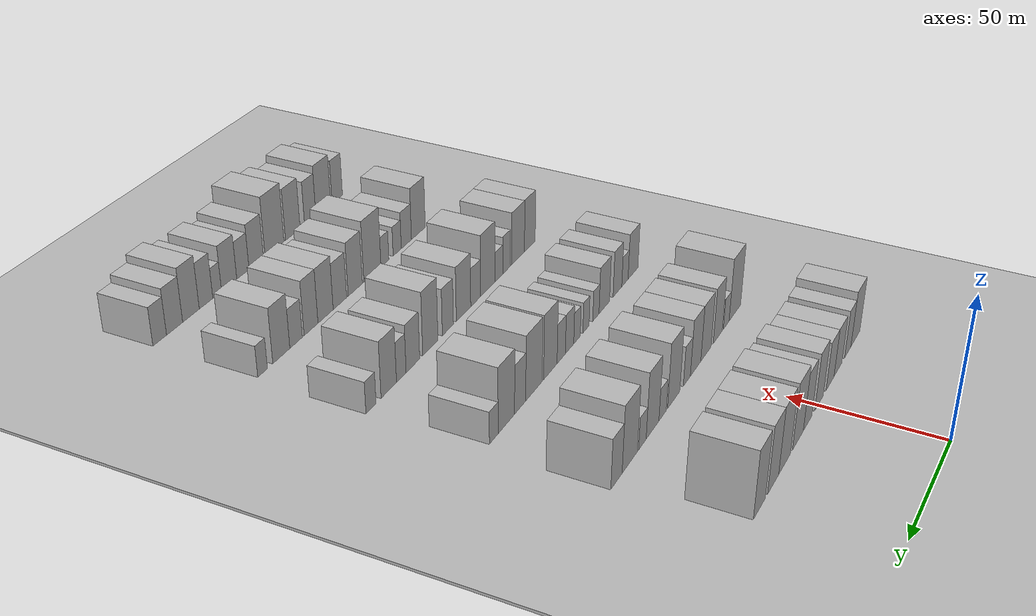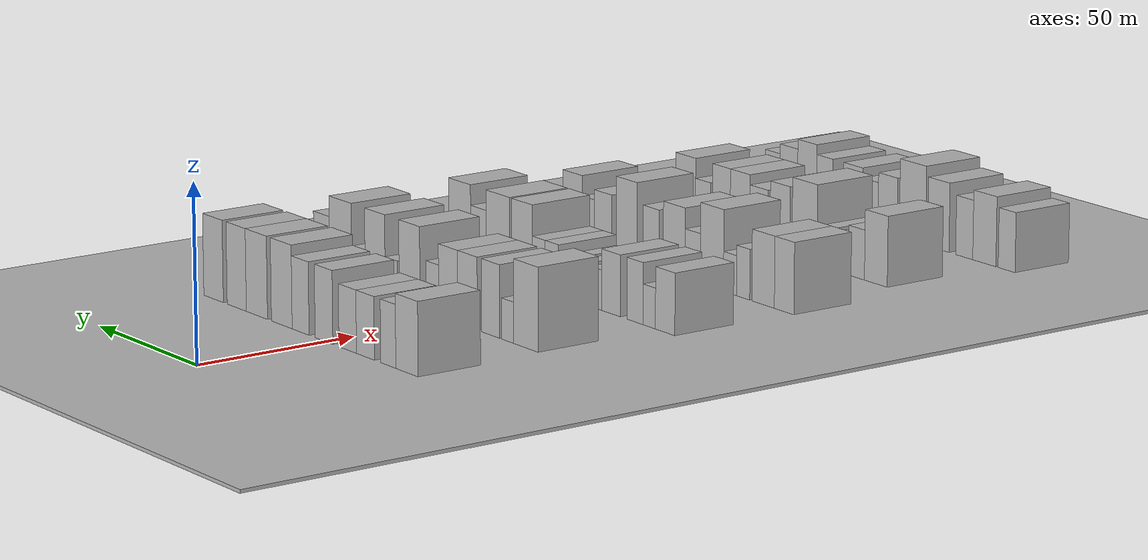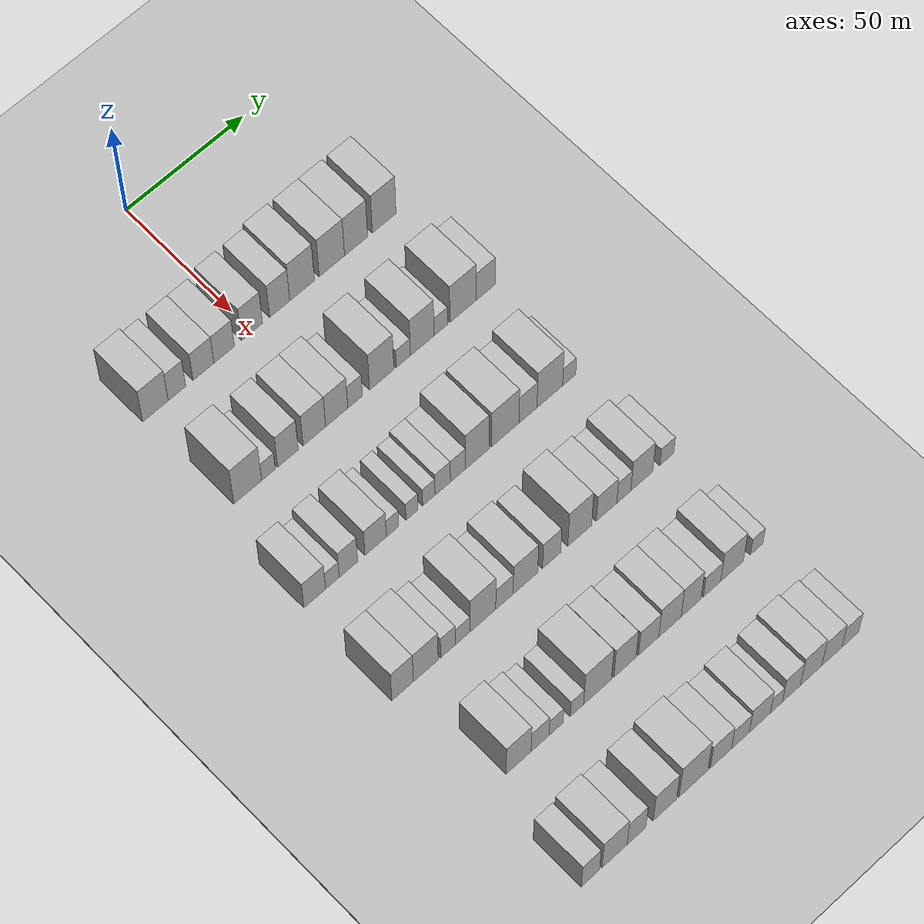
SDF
<sdf version="1.6">
 <world name="default">
  <include><name>ground_plane_1</name><uri>model://HANNAS_ground_plane</uri></include>
  <include>
   <name>ground_plane_2</name>
   <uri>model://HANNAS_ground_plane</uri>
   <pose>100 0 0  0 0 0</pose>
  </include>
  <model name="building_69">
   <static>1</static>
   <pose>50.0000 -40.2762 0 0.000000 0.000000 0.000000</pose>
   <link name="link">
    <pose>0 0 10.50 0 0 0</pose>
    <collision name="collision"><geometry><box><size>20.0000 10.4989 21.0000</size></box></geometry></collision>
    <visual name="visual">
     <cast_shadows>0</cast_shadows>
     <geometry><box><size>20.0000 10.4989 21.0000</size></box></geometry>
     <material>
      <script>
       <uri>model://HANNAS_wall/materials/scripts</uri>
       <uri>model://HANNAS_wall/materials/textures</uri>
       <name>vrc/HANNAS_wall</name>
      </script>
     </material>
    </visual>
   </link>
  </model>
  <model name="building_70">
   <static>1</static>
   <pose>50.0000 -31.4251 0 0.000000 0.000000 0.000000</pose>
   <link name="link">
    <pose>0 0 9.00 0 0 0</pose>
    <collision name="collision"><geometry><box><size>20.0000 7.2034 18.0000</size></box></geometry></collision>
    <visual name="visual">
     <cast_shadows>0</cast_shadows>
     <geometry><box><size>20.0000 7.2034 18.0000</size></box></geometry>
     <material>
      <script>
       <uri>model://HANNAS_wall/materials/scripts</uri>
       <uri>model://HANNAS_wall/materials/textures</uri>
       <name>vrc/HANNAS_wall</name>
      </script>
     </material>
    </visual>
   </link>
  </model>
  <model name="building_71">
   <static>1</static>
   <pose>50.0000 -20.4937 0 0.000000 0.000000 0.000000</pose>
   <link name="link">
    <pose>0 0 9.00 0 0 0</pose>
    <collision name="collision"><geometry><box><size>20.0000 8.6593 18.0000</size></box></geometry></collision>
    <visual name="visual">
     <cast_shadows>0</cast_shadows>
     <geometry><box><size>20.0000 8.6593 18.0000</size></box></geometry>
     <material>
      <script>
       <uri>model://HANNAS_wall/materials/scripts</uri>
       <uri>model://HANNAS_wall/materials/textures</uri>
       <name>vrc/HANNAS_wall</name>
      </script>
     </material>
    </visual>
   </link>
  </model>
  <model name="building_72">
   <static>1</static>
   <pose>50.0000 -11.9070 0 0.000000 0.000000 0.000000</pose>
   <link name="link">
    <pose>0 0 9.00 0 0 0</pose>
    <collision name="collision"><geometry><box><size>20.0000 8.5142 18.0000</size></box></geometry></collision>
    <visual name="visual">
     <cast_shadows>0</cast_shadows>
     <geometry><box><size>20.0000 8.5142 18.0000</size></box></geometry>
     <material>
      <script>
       <uri>model://HANNAS_wall/materials/scripts</uri>
       <uri>model://HANNAS_wall/materials/textures</uri>
       <name>vrc/HANNAS_wall</name>
      </script>
     </material>
    </visual>
   </link>
  </model>
  <model name="building_73">
   <static>1</static>
   <pose>50.0000 -0.2831 0 0.000000 0.000000 0.000000</pose>
   <link name="link">
    <pose>0 0 10.50 0 0 0</pose>
    <collision name="collision"><geometry><box><size>20.0000 8.7335 21.0000</size></box></geometry></collision>
    <visual name="visual">
     <cast_shadows>0</cast_shadows>
     <geometry><box><size>20.0000 8.7335 21.0000</size></box></geometry>
     <material>
      <script>
       <uri>model://HANNAS_wall/materials/scripts</uri>
       <uri>model://HANNAS_wall/materials/textures</uri>
       <name>vrc/HANNAS_wall</name>
      </script>
     </material>
    </visual>
   </link>
  </model>
  <model name="building_74">
   <static>1</static>
   <pose>50.0000 11.3050 0 0.000000 0.000000 0.000000</pose>
   <link name="link">
    <pose>0 0 10.50 0 0 0</pose>
    <collision name="collision"><geometry><box><size>20.0000 8.4427 21.0000</size></box></geometry></collision>
    <visual name="visual">
     <cast_shadows>0</cast_shadows>
     <geometry><box><size>20.0000 8.4427 21.0000</size></box></geometry>
     <material>
      <script>
       <uri>model://HANNAS_wall/materials/scripts</uri>
       <uri>model://HANNAS_wall/materials/textures</uri>
       <name>vrc/HANNAS_wall</name>
      </script>
     </material>
    </visual>
   </link>
  </model>
  <model name="building_75">
   <static>1</static>
   <pose>50.0000 20.7596 0 0.000000 0.000000 0.000000</pose>
   <link name="link">
    <pose>0 0 12.00 0 0 0</pose>
    <collision name="collision"><geometry><box><size>20.0000 10.4666 24.0000</size></box></geometry></collision>
    <visual name="visual">
     <cast_shadows>0</cast_shadows>
     <geometry><box><size>20.0000 10.4666 24.0000</size></box></geometry>
     <material>
      <script>
       <uri>model://HANNAS_wall/materials/scripts</uri>
       <uri>model://HANNAS_wall/materials/textures</uri>
       <name>vrc/HANNAS_wall</name>
      </script>
     </material>
    </visual>
   </link>
  </model>
  <model name="building_76">
   <static>1</static>
   <pose>50.0000 33.4043 0 0.000000 0.000000 0.000000</pose>
   <link name="link">
    <pose>0 0 12.00 0 0 0</pose>
    <collision name="collision"><geometry><box><size>20.0000 10.8227 24.0000</size></box></geometry></collision>
    <visual name="visual">
     <cast_shadows>0</cast_shadows>
     <geometry><box><size>20.0000 10.8227 24.0000</size></box></geometry>
     <material>
      <script>
       <uri>model://HANNAS_wall/materials/scripts</uri>
       <uri>model://HANNAS_wall/materials/textures</uri>
       <name>vrc/HANNAS_wall</name>
      </script>
     </material>
    </visual>
   </link>
  </model>
  <model name="building_77">
   <static>1</static>
   <pose>50.0000 43.7617 0 0.000000 0.000000 0.000000</pose>
   <link name="link">
    <pose>0 0 12.00 0 0 0</pose>
    <collision name="collision"><geometry><box><size>20.0000 9.8921 24.0000</size></box></geometry></collision>
    <visual name="visual">
     <cast_shadows>0</cast_shadows>
     <geometry><box><size>20.0000 9.8921 24.0000</size></box></geometry>
     <material>
      <script>
       <uri>model://HANNAS_wall/materials/scripts</uri>
       <uri>model://HANNAS_wall/materials/textures</uri>
       <name>vrc/HANNAS_wall</name>
      </script>
     </material>
    </visual>
   </link>
  </model>
  <model name="building_78">
   <static>1</static>
   <pose>50.0000 55.8153 0 0.000000 0.000000 0.000000</pose>
   <link name="link">
    <pose>0 0 12.00 0 0 0</pose>
    <collision name="collision"><geometry><box><size>20.0000 10.2152 24.0000</size></box></geometry></collision>
    <visual name="visual">
     <cast_shadows>0</cast_shadows>
     <geometry><box><size>20.0000 10.2152 24.0000</size></box></geometry>
     <material>
      <script>
       <uri>model://HANNAS_wall/materials/scripts</uri>
       <uri>model://HANNAS_wall/materials/textures</uri>
       <name>vrc/HANNAS_wall</name>
      </script>
     </material>
    </visual>
   </link>
  </model>
  <model name="building_208">
   <static>1</static>
   <pose>90.0000 -38.0436 0 0.000000 0.000000 0.000000</pose>
   <link name="link">
    <pose>0 0 12.00 0 0 0</pose>
    <collision name="collision"><geometry><box><size>20.0000 11.4128 24.0000</size></box></geometry></collision>
    <visual name="visual">
     <cast_shadows>0</cast_shadows>
     <geometry><box><size>20.0000 11.4128 24.0000</size></box></geometry>
     <material>
      <script>
       <uri>model://HANNAS_wall/materials/scripts</uri>
       <uri>model://HANNAS_wall/materials/textures</uri>
       <name>vrc/HANNAS_wall</name>
      </script>
     </material>
    </visual>
   </link>
  </model>
  <model name="building_209">
   <static>1</static>
   <pose>90.0000 -29.5379 0 0.000000 0.000000 0.000000</pose>
   <link name="link">
    <pose>0 0 6.00 0 0 0</pose>
    <collision name="collision"><geometry><box><size>20.0000 5.5986 12.0000</size></box></geometry></collision>
    <visual name="visual">
     <cast_shadows>0</cast_shadows>
     <geometry><box><size>20.0000 5.5986 12.0000</size></box></geometry>
     <material>
      <script>
       <uri>model://HANNAS_wall/materials/scripts</uri>
       <uri>model://HANNAS_wall/materials/textures</uri>
       <name>vrc/HANNAS_wall</name>
      </script>
     </material>
    </visual>
   </link>
  </model>
  <model name="building_210">
   <static>1</static>
   <pose>90.0000 -21.4828 0 0.000000 0.000000 0.000000</pose>
   <link name="link">
    <pose>0 0 10.50 0 0 0</pose>
    <collision name="collision"><geometry><box><size>20.0000 8.5116 21.0000</size></box></geometry></collision>
    <visual name="visual">
     <cast_shadows>0</cast_shadows>
     <geometry><box><size>20.0000 8.5116 21.0000</size></box></geometry>
     <material>
      <script>
       <uri>model://HANNAS_wall/materials/scripts</uri>
       <uri>model://HANNAS_wall/materials/textures</uri>
       <name>vrc/HANNAS_wall</name>
      </script>
     </material>
    </visual>
   </link>
  </model>
  <model name="building_211">
   <static>1</static>
   <pose>90.0000 -10.5505 0 0.000000 0.000000 0.000000</pose>
   <link name="link">
    <pose>0 0 10.50 0 0 0</pose>
    <collision name="collision"><geometry><box><size>20.0000 9.3529 21.0000</size></box></geometry></collision>
    <visual name="visual">
     <cast_shadows>0</cast_shadows>
     <geometry><box><size>20.0000 9.3529 21.0000</size></box></geometry>
     <material>
      <script>
       <uri>model://HANNAS_wall/materials/scripts</uri>
       <uri>model://HANNAS_wall/materials/textures</uri>
       <name>vrc/HANNAS_wall</name>
      </script>
     </material>
    </visual>
   </link>
  </model>
  <model name="building_212">
   <static>1</static>
   <pose>90.0000 -1.2440 0 0.000000 0.000000 0.000000</pose>
   <link name="link">
    <pose>0 0 10.50 0 0 0</pose>
    <collision name="collision"><geometry><box><size>20.0000 9.2602 21.0000</size></box></geometry></collision>
    <visual name="visual">
     <cast_shadows>0</cast_shadows>
     <geometry><box><size>20.0000 9.2602 21.0000</size></box></geometry>
     <material>
      <script>
       <uri>model://HANNAS_wall/materials/scripts</uri>
       <uri>model://HANNAS_wall/materials/textures</uri>
       <name>vrc/HANNAS_wall</name>
      </script>
     </material>
    </visual>
   </link>
  </model>
  <model name="building_213">
   <static>1</static>
   <pose>90.0000 6.4422 0 0.000000 0.000000 0.000000</pose>
   <link name="link">
    <pose>0 0 7.50 0 0 0</pose>
    <collision name="collision"><geometry><box><size>20.0000 6.1121 15.0000</size></box></geometry></collision>
    <visual name="visual">
     <cast_shadows>0</cast_shadows>
     <geometry><box><size>20.0000 6.1121 15.0000</size></box></geometry>
     <material>
      <script>
       <uri>model://HANNAS_wall/materials/scripts</uri>
       <uri>model://HANNAS_wall/materials/textures</uri>
       <name>vrc/HANNAS_wall</name>
      </script>
     </material>
    </visual>
   </link>
  </model>
  <model name="building_214">
   <static>1</static>
   <pose>90.0000 17.6337 0 0.000000 0.000000 0.000000</pose>
   <link name="link">
    <pose>0 0 12.00 0 0 0</pose>
    <collision name="collision"><geometry><box><size>20.0000 10.2709 24.0000</size></box></geometry></collision>
    <visual name="visual">
     <cast_shadows>0</cast_shadows>
     <geometry><box><size>20.0000 10.2709 24.0000</size></box></geometry>
     <material>
      <script>
       <uri>model://HANNAS_wall/materials/scripts</uri>
       <uri>model://HANNAS_wall/materials/textures</uri>
       <name>vrc/HANNAS_wall</name>
      </script>
     </material>
    </visual>
   </link>
  </model>
  <model name="building_215">
   <static>1</static>
   <pose>90.0000 26.7598 0 0.000000 0.000000 0.000000</pose>
   <link name="link">
    <pose>0 0 6.00 0 0 0</pose>
    <collision name="collision"><geometry><box><size>20.0000 5.9815 12.0000</size></box></geometry></collision>
    <visual name="visual">
     <cast_shadows>0</cast_shadows>
     <geometry><box><size>20.0000 5.9815 12.0000</size></box></geometry>
     <material>
      <script>
       <uri>model://HANNAS_wall/materials/scripts</uri>
       <uri>model://HANNAS_wall/materials/textures</uri>
       <name>vrc/HANNAS_wall</name>
      </script>
     </material>
    </visual>
   </link>
  </model>
  <model name="building_216">
   <static>1</static>
   <pose>90.0000 34.7843 0 0.000000 0.000000 0.000000</pose>
   <link name="link">
    <pose>0 0 12.00 0 0 0</pose>
    <collision name="collision"><geometry><box><size>20.0000 10.0675 24.0000</size></box></geometry></collision>
    <visual name="visual">
     <cast_shadows>0</cast_shadows>
     <geometry><box><size>20.0000 10.0675 24.0000</size></box></geometry>
     <material>
      <script>
       <uri>model://HANNAS_wall/materials/scripts</uri>
       <uri>model://HANNAS_wall/materials/textures</uri>
       <name>vrc/HANNAS_wall</name>
      </script>
     </material>
    </visual>
   </link>
  </model>
  <model name="building_217">
   <static>1</static>
   <pose>90.0000 42.7127 0 0.000000 0.000000 0.000000</pose>
   <link name="link">
    <pose>0 0 6.00 0 0 0</pose>
    <collision name="collision"><geometry><box><size>20.0000 5.7894 12.0000</size></box></geometry></collision>
    <visual name="visual">
     <cast_shadows>0</cast_shadows>
     <geometry><box><size>20.0000 5.7894 12.0000</size></box></geometry>
     <material>
      <script>
       <uri>model://HANNAS_wall/materials/scripts</uri>
       <uri>model://HANNAS_wall/materials/textures</uri>
       <name>vrc/HANNAS_wall</name>
      </script>
     </material>
    </visual>
   </link>
  </model>
  <model name="building_218">
   <static>1</static>
   <pose>90.0000 52.2716 0 0.000000 0.000000 0.000000</pose>
   <link name="link">
    <pose>0 0 12.00 0 0 0</pose>
    <collision name="collision"><geometry><box><size>20.0000 11.3285 24.0000</size></box></geometry></collision>
    <visual name="visual">
     <cast_shadows>0</cast_shadows>
     <geometry><box><size>20.0000 11.3285 24.0000</size></box></geometry>
     <material>
      <script>
       <uri>model://HANNAS_wall/materials/scripts</uri>
       <uri>model://HANNAS_wall/materials/textures</uri>
       <name>vrc/HANNAS_wall</name>
      </script>
     </material>
    </visual>
   </link>
  </model>
  <model name="building_219">
   <static>1</static>
   <pose>90.0000 62.0238 0 0.000000 0.000000 0.000000</pose>
   <link name="link">
    <pose>0 0 9.00 0 0 0</pose>
    <collision name="collision"><geometry><box><size>20.0000 8.1759 18.0000</size></box></geometry></collision>
    <visual name="visual">
     <cast_shadows>0</cast_shadows>
     <geometry><box><size>20.0000 8.1759 18.0000</size></box></geometry>
     <material>
      <script>
       <uri>model://HANNAS_wall/materials/scripts</uri>
       <uri>model://HANNAS_wall/materials/textures</uri>
       <name>vrc/HANNAS_wall</name>
      </script>
     </material>
    </visual>
   </link>
  </model>
  <model name="building_340">
   <static>1</static>
   <pose>130.0000 -46.9595 0 0.000000 0.000000 0.000000</pose>
   <link name="link">
    <pose>0 0 9.00 0 0 0</pose>
    <collision name="collision"><geometry><box><size>20.0000 8.8061 18.0000</size></box></geometry></collision>
    <visual name="visual">
     <cast_shadows>0</cast_shadows>
     <geometry><box><size>20.0000 8.8061 18.0000</size></box></geometry>
     <material>
      <script>
       <uri>model://HANNAS_wall/materials/scripts</uri>
       <uri>model://HANNAS_wall/materials/textures</uri>
       <name>vrc/HANNAS_wall</name>
      </script>
     </material>
    </visual>
   </link>
  </model>
  <model name="building_341">
   <static>1</static>
   <pose>130.0000 -39.7646 0 0.000000 0.000000 0.000000</pose>
   <link name="link">
    <pose>0 0 6.00 0 0 0</pose>
    <collision name="collision"><geometry><box><size>20.0000 5.5837 12.0000</size></box></geometry></collision>
    <visual name="visual">
     <cast_shadows>0</cast_shadows>
     <geometry><box><size>20.0000 5.5837 12.0000</size></box></geometry>
     <material>
      <script>
       <uri>model://HANNAS_wall/materials/scripts</uri>
       <uri>model://HANNAS_wall/materials/textures</uri>
       <name>vrc/HANNAS_wall</name>
      </script>
     </material>
    </visual>
   </link>
  </model>
  <model name="building_342">
   <static>1</static>
   <pose>130.0000 -33.2033 0 0.000000 0.000000 0.000000</pose>
   <link name="link">
    <pose>0 0 9.00 0 0 0</pose>
    <collision name="collision"><geometry><box><size>20.0000 7.5389 18.0000</size></box></geometry></collision>
    <visual name="visual">
     <cast_shadows>0</cast_shadows>
     <geometry><box><size>20.0000 7.5389 18.0000</size></box></geometry>
     <material>
      <script>
       <uri>model://HANNAS_wall/materials/scripts</uri>
       <uri>model://HANNAS_wall/materials/textures</uri>
       <name>vrc/HANNAS_wall</name>
      </script>
     </material>
    </visual>
   </link>
  </model>
  <model name="building_343">
   <static>1</static>
   <pose>130.0000 -22.0346 0 0.000000 0.000000 0.000000</pose>
   <link name="link">
    <pose>0 0 9.00 0 0 0</pose>
    <collision name="collision"><geometry><box><size>20.0000 8.7986 18.0000</size></box></geometry></collision>
    <visual name="visual">
     <cast_shadows>0</cast_shadows>
     <geometry><box><size>20.0000 8.7986 18.0000</size></box></geometry>
     <material>
      <script>
       <uri>model://HANNAS_wall/materials/scripts</uri>
       <uri>model://HANNAS_wall/materials/textures</uri>
       <name>vrc/HANNAS_wall</name>
      </script>
     </material>
    </visual>
   </link>
  </model>
  <model name="building_344">
   <static>1</static>
   <pose>130.0000 -15.0556 0 0.000000 0.000000 0.000000</pose>
   <link name="link">
    <pose>0 0 6.00 0 0 0</pose>
    <collision name="collision"><geometry><box><size>20.0000 5.1593 12.0000</size></box></geometry></collision>
    <visual name="visual">
     <cast_shadows>0</cast_shadows>
     <geometry><box><size>20.0000 5.1593 12.0000</size></box></geometry>
     <material>
      <script>
       <uri>model://HANNAS_wall/materials/scripts</uri>
       <uri>model://HANNAS_wall/materials/textures</uri>
       <name>vrc/HANNAS_wall</name>
      </script>
     </material>
    </visual>
   </link>
  </model>
  <model name="building_345">
   <static>1</static>
   <pose>130.0000 -6.9875 0 0.000000 0.000000 0.000000</pose>
   <link name="link">
    <pose>0 0 6.00 0 0 0</pose>
    <collision name="collision"><geometry><box><size>20.0000 4.9771 12.0000</size></box></geometry></collision>
    <visual name="visual">
     <cast_shadows>0</cast_shadows>
     <geometry><box><size>20.0000 4.9771 12.0000</size></box></geometry>
     <material>
      <script>
       <uri>model://HANNAS_wall/materials/scripts</uri>
       <uri>model://HANNAS_wall/materials/textures</uri>
       <name>vrc/HANNAS_wall</name>
      </script>
     </material>
    </visual>
   </link>
  </model>
  <model name="building_346">
   <static>1</static>
   <pose>130.0000 0.0690 0 0.000000 0.000000 0.000000</pose>
   <link name="link">
    <pose>0 0 6.00 0 0 0</pose>
    <collision name="collision"><geometry><box><size>20.0000 5.1359 12.0000</size></box></geometry></collision>
    <visual name="visual">
     <cast_shadows>0</cast_shadows>
     <geometry><box><size>20.0000 5.1359 12.0000</size></box></geometry>
     <material>
      <script>
       <uri>model://HANNAS_wall/materials/scripts</uri>
       <uri>model://HANNAS_wall/materials/textures</uri>
       <name>vrc/HANNAS_wall</name>
      </script>
     </material>
    </visual>
   </link>
  </model>
  <model name="building_347">
   <static>1</static>
   <pose>130.0000 5.8634 0 0.000000 0.000000 0.000000</pose>
   <link name="link">
    <pose>0 0 7.50 0 0 0</pose>
    <collision name="collision"><geometry><box><size>20.0000 6.4530 15.0000</size></box></geometry></collision>
    <visual name="visual">
     <cast_shadows>0</cast_shadows>
     <geometry><box><size>20.0000 6.4530 15.0000</size></box></geometry>
     <material>
      <script>
       <uri>model://HANNAS_wall/materials/scripts</uri>
       <uri>model://HANNAS_wall/materials/textures</uri>
       <name>vrc/HANNAS_wall</name>
      </script>
     </material>
    </visual>
   </link>
  </model>
  <model name="building_348">
   <static>1</static>
   <pose>130.0000 12.2348 0 0.000000 0.000000 0.000000</pose>
   <link name="link">
    <pose>0 0 7.50 0 0 0</pose>
    <collision name="collision"><geometry><box><size>20.0000 6.2898 15.0000</size></box></geometry></collision>
    <visual name="visual">
     <cast_shadows>0</cast_shadows>
     <geometry><box><size>20.0000 6.2898 15.0000</size></box></geometry>
     <material>
      <script>
       <uri>model://HANNAS_wall/materials/scripts</uri>
       <uri>model://HANNAS_wall/materials/textures</uri>
       <name>vrc/HANNAS_wall</name>
      </script>
     </material>
    </visual>
   </link>
  </model>
  <model name="building_349">
   <static>1</static>
   <pose>130.0000 20.3370 0 0.000000 0.000000 0.000000</pose>
   <link name="link">
    <pose>0 0 12.00 0 0 0</pose>
    <collision name="collision"><geometry><box><size>20.0000 9.9145 24.0000</size></box></geometry></collision>
    <visual name="visual">
     <cast_shadows>0</cast_shadows>
     <geometry><box><size>20.0000 9.9145 24.0000</size></box></geometry>
     <material>
      <script>
       <uri>model://HANNAS_wall/materials/scripts</uri>
       <uri>model://HANNAS_wall/materials/textures</uri>
       <name>vrc/HANNAS_wall</name>
      </script>
     </material>
    </visual>
   </link>
  </model>
  <model name="building_350">
   <static>1</static>
   <pose>130.0000 32.1590 0 0.000000 0.000000 0.000000</pose>
   <link name="link">
    <pose>0 0 12.00 0 0 0</pose>
    <collision name="collision"><geometry><box><size>20.0000 11.7296 24.0000</size></box></geometry></collision>
    <visual name="visual">
     <cast_shadows>0</cast_shadows>
     <geometry><box><size>20.0000 11.7296 24.0000</size></box></geometry>
     <material>
      <script>
       <uri>model://HANNAS_wall/materials/scripts</uri>
       <uri>model://HANNAS_wall/materials/textures</uri>
       <name>vrc/HANNAS_wall</name>
      </script>
     </material>
    </visual>
   </link>
  </model>
  <model name="building_351">
   <static>1</static>
   <pose>130.0000 41.8613 0 0.000000 0.000000 0.000000</pose>
   <link name="link">
    <pose>0 0 9.00 0 0 0</pose>
    <collision name="collision"><geometry><box><size>20.0000 7.6749 18.0000</size></box></geometry></collision>
    <visual name="visual">
     <cast_shadows>0</cast_shadows>
     <geometry><box><size>20.0000 7.6749 18.0000</size></box></geometry>
     <material>
      <script>
       <uri>model://HANNAS_wall/materials/scripts</uri>
       <uri>model://HANNAS_wall/materials/textures</uri>
       <name>vrc/HANNAS_wall</name>
      </script>
     </material>
    </visual>
   </link>
  </model>
  <model name="building_352">
   <static>1</static>
   <pose>130.0000 51.1980 0 0.000000 0.000000 0.000000</pose>
   <link name="link">
    <pose>0 0 12.00 0 0 0</pose>
    <collision name="collision"><geometry><box><size>20.0000 10.9986 24.0000</size></box></geometry></collision>
    <visual name="visual">
     <cast_shadows>0</cast_shadows>
     <geometry><box><size>20.0000 10.9986 24.0000</size></box></geometry>
     <material>
      <script>
       <uri>model://HANNAS_wall/materials/scripts</uri>
       <uri>model://HANNAS_wall/materials/textures</uri>
       <name>vrc/HANNAS_wall</name>
      </script>
     </material>
    </visual>
   </link>
  </model>
  <model name="building_353">
   <static>1</static>
   <pose>130.0000 59.5300 0 0.000000 0.000000 0.000000</pose>
   <link name="link">
    <pose>0 0 6.00 0 0 0</pose>
    <collision name="collision"><geometry><box><size>20.0000 5.6652 12.0000</size></box></geometry></collision>
    <visual name="visual">
     <cast_shadows>0</cast_shadows>
     <geometry><box><size>20.0000 5.6652 12.0000</size></box></geometry>
     <material>
      <script>
       <uri>model://HANNAS_wall/materials/scripts</uri>
       <uri>model://HANNAS_wall/materials/textures</uri>
       <name>vrc/HANNAS_wall</name>
      </script>
     </material>
    </visual>
   </link>
  </model>
  <model name="building_472">
   <static>1</static>
   <pose>170.0000 -48.2260 0 0.000000 0.000000 0.000000</pose>
   <link name="link">
    <pose>0 0 10.50 0 0 0</pose>
    <collision name="collision"><geometry><box><size>20.0000 8.7506 21.0000</size></box></geometry></collision>
    <visual name="visual">
     <cast_shadows>0</cast_shadows>
     <geometry><box><size>20.0000 8.7506 21.0000</size></box></geometry>
     <material>
      <script>
       <uri>model://HANNAS_wall/materials/scripts</uri>
       <uri>model://HANNAS_wall/materials/textures</uri>
       <name>vrc/HANNAS_wall</name>
      </script>
     </material>
    </visual>
   </link>
  </model>
  <model name="building_473">
   <static>1</static>
   <pose>170.0000 -38.7772 0 0.000000 0.000000 0.000000</pose>
   <link name="link">
    <pose>0 0 10.50 0 0 0</pose>
    <collision name="collision"><geometry><box><size>20.0000 10.1470 21.0000</size></box></geometry></collision>
    <visual name="visual">
     <cast_shadows>0</cast_shadows>
     <geometry><box><size>20.0000 10.1470 21.0000</size></box></geometry>
     <material>
      <script>
       <uri>model://HANNAS_wall/materials/scripts</uri>
       <uri>model://HANNAS_wall/materials/textures</uri>
       <name>vrc/HANNAS_wall</name>
      </script>
     </material>
    </visual>
   </link>
  </model>
  <model name="building_474">
   <static>1</static>
   <pose>170.0000 -29.6790 0 0.000000 0.000000 0.000000</pose>
   <link name="link">
    <pose>0 0 7.50 0 0 0</pose>
    <collision name="collision"><geometry><box><size>20.0000 6.0495 15.0000</size></box></geometry></collision>
    <visual name="visual">
     <cast_shadows>0</cast_shadows>
     <geometry><box><size>20.0000 6.0495 15.0000</size></box></geometry>
     <material>
      <script>
       <uri>model://HANNAS_wall/materials/scripts</uri>
       <uri>model://HANNAS_wall/materials/textures</uri>
       <name>vrc/HANNAS_wall</name>
      </script>
     </material>
    </visual>
   </link>
  </model>
  <model name="building_475">
   <static>1</static>
   <pose>170.0000 -23.6698 0 0.000000 0.000000 0.000000</pose>
   <link name="link">
    <pose>0 0 6.00 0 0 0</pose>
    <collision name="collision"><geometry><box><size>20.0000 5.9690 12.0000</size></box></geometry></collision>
    <visual name="visual">
     <cast_shadows>0</cast_shadows>
     <geometry><box><size>20.0000 5.9690 12.0000</size></box></geometry>
     <material>
      <script>
       <uri>model://HANNAS_wall/materials/scripts</uri>
       <uri>model://HANNAS_wall/materials/textures</uri>
       <name>vrc/HANNAS_wall</name>
      </script>
     </material>
    </visual>
   </link>
  </model>
  <model name="building_476">
   <static>1</static>
   <pose>170.0000 -15.3594 0 0.000000 0.000000 0.000000</pose>
   <link name="link">
    <pose>0 0 12.00 0 0 0</pose>
    <collision name="collision"><geometry><box><size>20.0000 10.6518 24.0000</size></box></geometry></collision>
    <visual name="visual">
     <cast_shadows>0</cast_shadows>
     <geometry><box><size>20.0000 10.6518 24.0000</size></box></geometry>
     <material>
      <script>
       <uri>model://HANNAS_wall/materials/scripts</uri>
       <uri>model://HANNAS_wall/materials/textures</uri>
       <name>vrc/HANNAS_wall</name>
      </script>
     </material>
    </visual>
   </link>
  </model>
  <model name="building_477">
   <static>1</static>
   <pose>170.0000 -6.4228 0 0.000000 0.000000 0.000000</pose>
   <link name="link">
    <pose>0 0 7.50 0 0 0</pose>
    <collision name="collision"><geometry><box><size>20.0000 7.2213 15.0000</size></box></geometry></collision>
    <visual name="visual">
     <cast_shadows>0</cast_shadows>
     <geometry><box><size>20.0000 7.2213 15.0000</size></box></geometry>
     <material>
      <script>
       <uri>model://HANNAS_wall/materials/scripts</uri>
       <uri>model://HANNAS_wall/materials/textures</uri>
       <name>vrc/HANNAS_wall</name>
      </script>
     </material>
    </visual>
   </link>
  </model>
  <model name="building_478">
   <static>1</static>
   <pose>170.0000 2.3158 0 0.000000 0.000000 0.000000</pose>
   <link name="link">
    <pose>0 0 10.50 0 0 0</pose>
    <collision name="collision"><geometry><box><size>20.0000 10.2560 21.0000</size></box></geometry></collision>
    <visual name="visual">
     <cast_shadows>0</cast_shadows>
     <geometry><box><size>20.0000 10.2560 21.0000</size></box></geometry>
     <material>
      <script>
       <uri>model://HANNAS_wall/materials/scripts</uri>
       <uri>model://HANNAS_wall/materials/textures</uri>
       <name>vrc/HANNAS_wall</name>
      </script>
     </material>
    </visual>
   </link>
  </model>
  <model name="building_479">
   <static>1</static>
   <pose>170.0000 13.2572 0 0.000000 0.000000 0.000000</pose>
   <link name="link">
    <pose>0 0 9.00 0 0 0</pose>
    <collision name="collision"><geometry><box><size>20.0000 7.6267 18.0000</size></box></geometry></collision>
    <visual name="visual">
     <cast_shadows>0</cast_shadows>
     <geometry><box><size>20.0000 7.6267 18.0000</size></box></geometry>
     <material>
      <script>
       <uri>model://HANNAS_wall/materials/scripts</uri>
       <uri>model://HANNAS_wall/materials/textures</uri>
       <name>vrc/HANNAS_wall</name>
      </script>
     </material>
    </visual>
   </link>
  </model>
  <model name="building_480">
   <static>1</static>
   <pose>170.0000 25.1035 0 0.000000 0.000000 0.000000</pose>
   <link name="link">
    <pose>0 0 12.00 0 0 0</pose>
    <collision name="collision"><geometry><box><size>20.0000 10.0659 24.0000</size></box></geometry></collision>
    <visual name="visual">
     <cast_shadows>0</cast_shadows>
     <geometry><box><size>20.0000 10.0659 24.0000</size></box></geometry>
     <material>
      <script>
       <uri>model://HANNAS_wall/materials/scripts</uri>
       <uri>model://HANNAS_wall/materials/textures</uri>
       <name>vrc/HANNAS_wall</name>
      </script>
     </material>
    </visual>
   </link>
  </model>
  <model name="building_481">
   <static>1</static>
   <pose>170.0000 36.4813 0 0.000000 0.000000 0.000000</pose>
   <link name="link">
    <pose>0 0 9.00 0 0 0</pose>
    <collision name="collision"><geometry><box><size>20.0000 8.6896 18.0000</size></box></geometry></collision>
    <visual name="visual">
     <cast_shadows>0</cast_shadows>
     <geometry><box><size>20.0000 8.6896 18.0000</size></box></geometry>
     <material>
      <script>
       <uri>model://HANNAS_wall/materials/scripts</uri>
       <uri>model://HANNAS_wall/materials/textures</uri>
       <name>vrc/HANNAS_wall</name>
      </script>
     </material>
    </visual>
   </link>
  </model>
  <model name="building_482">
   <static>1</static>
   <pose>170.0000 43.8267 0 0.000000 0.000000 0.000000</pose>
   <link name="link">
    <pose>0 0 7.50 0 0 0</pose>
    <collision name="collision"><geometry><box><size>20.0000 6.0012 15.0000</size></box></geometry></collision>
    <visual name="visual">
     <cast_shadows>0</cast_shadows>
     <geometry><box><size>20.0000 6.0012 15.0000</size></box></geometry>
     <material>
      <script>
       <uri>model://HANNAS_wall/materials/scripts</uri>
       <uri>model://HANNAS_wall/materials/textures</uri>
       <name>vrc/HANNAS_wall</name>
      </script>
     </material>
    </visual>
   </link>
  </model>
  <model name="building_483">
   <static>1</static>
   <pose>170.0000 51.5486 0 0.000000 0.000000 0.000000</pose>
   <link name="link">
    <pose>0 0 10.50 0 0 0</pose>
    <collision name="collision"><geometry><box><size>20.0000 9.4427 21.0000</size></box></geometry></collision>
    <visual name="visual">
     <cast_shadows>0</cast_shadows>
     <geometry><box><size>20.0000 9.4427 21.0000</size></box></geometry>
     <material>
      <script>
       <uri>model://HANNAS_wall/materials/scripts</uri>
       <uri>model://HANNAS_wall/materials/textures</uri>
       <name>vrc/HANNAS_wall</name>
      </script>
     </material>
    </visual>
   </link>
  </model>
  <model name="building_484">
   <static>1</static>
   <pose>170.0000 62.2619 0 0.000000 0.000000 0.000000</pose>
   <link name="link">
    <pose>0 0 6.00 0 0 0</pose>
    <collision name="collision"><geometry><box><size>20.0000 5.9839 12.0000</size></box></geometry></collision>
    <visual name="visual">
     <cast_shadows>0</cast_shadows>
     <geometry><box><size>20.0000 5.9839 12.0000</size></box></geometry>
     <material>
      <script>
       <uri>model://HANNAS_wall/materials/scripts</uri>
       <uri>model://HANNAS_wall/materials/textures</uri>
       <name>vrc/HANNAS_wall</name>
      </script>
     </material>
    </visual>
   </link>
  </model>
  <model name="building_615">
   <static>1</static>
   <pose>210.0000 -38.9302 0 0.000000 0.000000 0.000000</pose>
   <link name="link">
    <pose>0 0 10.50 0 0 0</pose>
    <collision name="collision"><geometry><box><size>20.0000 10.1797 21.0000</size></box></geometry></collision>
    <visual name="visual">
     <cast_shadows>0</cast_shadows>
     <geometry><box><size>20.0000 10.1797 21.0000</size></box></geometry>
     <material>
      <script>
       <uri>model://HANNAS_wall/materials/scripts</uri>
       <uri>model://HANNAS_wall/materials/textures</uri>
       <name>vrc/HANNAS_wall</name>
      </script>
     </material>
    </visual>
   </link>
  </model>
  <model name="building_616">
   <static>1</static>
   <pose>210.0000 -30.1647 0 0.000000 0.000000 0.000000</pose>
   <link name="link">
    <pose>0 0 7.50 0 0 0</pose>
    <collision name="collision"><geometry><box><size>20.0000 7.3512 15.0000</size></box></geometry></collision>
    <visual name="visual">
     <cast_shadows>0</cast_shadows>
     <geometry><box><size>20.0000 7.3512 15.0000</size></box></geometry>
     <material>
      <script>
       <uri>model://HANNAS_wall/materials/scripts</uri>
       <uri>model://HANNAS_wall/materials/textures</uri>
       <name>vrc/HANNAS_wall</name>
      </script>
     </material>
    </visual>
   </link>
  </model>
  <model name="building_617">
   <static>1</static>
   <pose>210.0000 -23.6056 0 0.000000 0.000000 0.000000</pose>
   <link name="link">
    <pose>0 0 6.00 0 0 0</pose>
    <collision name="collision"><geometry><box><size>20.0000 5.7670 12.0000</size></box></geometry></collision>
    <visual name="visual">
     <cast_shadows>0</cast_shadows>
     <geometry><box><size>20.0000 5.7670 12.0000</size></box></geometry>
     <material>
      <script>
       <uri>model://HANNAS_wall/materials/scripts</uri>
       <uri>model://HANNAS_wall/materials/textures</uri>
       <name>vrc/HANNAS_wall</name>
      </script>
     </material>
    </visual>
   </link>
  </model>
  <model name="building_618">
   <static>1</static>
   <pose>210.0000 -14.9993 0 0.000000 0.000000 0.000000</pose>
   <link name="link">
    <pose>0 0 6.00 0 0 0</pose>
    <collision name="collision"><geometry><box><size>20.0000 5.4457 12.0000</size></box></geometry></collision>
    <visual name="visual">
     <cast_shadows>0</cast_shadows>
     <geometry><box><size>20.0000 5.4457 12.0000</size></box></geometry>
     <material>
      <script>
       <uri>model://HANNAS_wall/materials/scripts</uri>
       <uri>model://HANNAS_wall/materials/textures</uri>
       <name>vrc/HANNAS_wall</name>
      </script>
     </material>
    </visual>
   </link>
  </model>
  <model name="building_619">
   <static>1</static>
   <pose>210.0000 -6.4908 0 0.000000 0.000000 0.000000</pose>
   <link name="link">
    <pose>0 0 12.00 0 0 0</pose>
    <collision name="collision"><geometry><box><size>20.0000 11.5711 24.0000</size></box></geometry></collision>
    <visual name="visual">
     <cast_shadows>0</cast_shadows>
     <geometry><box><size>20.0000 11.5711 24.0000</size></box></geometry>
     <material>
      <script>
       <uri>model://HANNAS_wall/materials/scripts</uri>
       <uri>model://HANNAS_wall/materials/textures</uri>
       <name>vrc/HANNAS_wall</name>
      </script>
     </material>
    </visual>
   </link>
  </model>
  <model name="building_620">
   <static>1</static>
   <pose>210.0000 4.9339 0 0.000000 0.000000 0.000000</pose>
   <link name="link">
    <pose>0 0 10.50 0 0 0</pose>
    <collision name="collision"><geometry><box><size>20.0000 9.2782 21.0000</size></box></geometry></collision>
    <visual name="visual">
     <cast_shadows>0</cast_shadows>
     <geometry><box><size>20.0000 9.2782 21.0000</size></box></geometry>
     <material>
      <script>
       <uri>model://HANNAS_wall/materials/scripts</uri>
       <uri>model://HANNAS_wall/materials/textures</uri>
       <name>vrc/HANNAS_wall</name>
      </script>
     </material>
    </visual>
   </link>
  </model>
  <model name="building_621">
   <static>1</static>
   <pose>210.0000 14.8387 0 0.000000 0.000000 0.000000</pose>
   <link name="link">
    <pose>0 0 9.00 0 0 0</pose>
    <collision name="collision"><geometry><box><size>20.0000 8.5314 18.0000</size></box></geometry></collision>
    <visual name="visual">
     <cast_shadows>0</cast_shadows>
     <geometry><box><size>20.0000 8.5314 18.0000</size></box></geometry>
     <material>
      <script>
       <uri>model://HANNAS_wall/materials/scripts</uri>
       <uri>model://HANNAS_wall/materials/textures</uri>
       <name>vrc/HANNAS_wall</name>
      </script>
     </material>
    </visual>
   </link>
  </model>
  <model name="building_622">
   <static>1</static>
   <pose>210.0000 23.8116 0 0.000000 0.000000 0.000000</pose>
   <link name="link">
    <pose>0 0 10.50 0 0 0</pose>
    <collision name="collision"><geometry><box><size>20.0000 9.4144 21.0000</size></box></geometry></collision>
    <visual name="visual">
     <cast_shadows>0</cast_shadows>
     <geometry><box><size>20.0000 9.4144 21.0000</size></box></geometry>
     <material>
      <script>
       <uri>model://HANNAS_wall/materials/scripts</uri>
       <uri>model://HANNAS_wall/materials/textures</uri>
       <name>vrc/HANNAS_wall</name>
      </script>
     </material>
    </visual>
   </link>
  </model>
  <model name="building_623">
   <static>1</static>
   <pose>210.0000 32.7236 0 0.000000 0.000000 0.000000</pose>
   <link name="link">
    <pose>0 0 10.50 0 0 0</pose>
    <collision name="collision"><geometry><box><size>20.0000 8.4097 21.0000</size></box></geometry></collision>
    <visual name="visual">
     <cast_shadows>0</cast_shadows>
     <geometry><box><size>20.0000 8.4097 21.0000</size></box></geometry>
     <material>
      <script>
       <uri>model://HANNAS_wall/materials/scripts</uri>
       <uri>model://HANNAS_wall/materials/textures</uri>
       <name>vrc/HANNAS_wall</name>
      </script>
     </material>
    </visual>
   </link>
  </model>
  <model name="building_624">
   <static>1</static>
   <pose>210.0000 41.6058 0 0.000000 0.000000 0.000000</pose>
   <link name="link">
    <pose>0 0 7.50 0 0 0</pose>
    <collision name="collision"><geometry><box><size>20.0000 7.3547 15.0000</size></box></geometry></collision>
    <visual name="visual">
     <cast_shadows>0</cast_shadows>
     <geometry><box><size>20.0000 7.3547 15.0000</size></box></geometry>
     <material>
      <script>
       <uri>model://HANNAS_wall/materials/scripts</uri>
       <uri>model://HANNAS_wall/materials/textures</uri>
       <name>vrc/HANNAS_wall</name>
      </script>
     </material>
    </visual>
   </link>
  </model>
  <model name="building_625">
   <static>1</static>
   <pose>210.0000 50.1667 0 0.000000 0.000000 0.000000</pose>
   <link name="link">
    <pose>0 0 10.50 0 0 0</pose>
    <collision name="collision"><geometry><box><size>20.0000 9.7671 21.0000</size></box></geometry></collision>
    <visual name="visual">
     <cast_shadows>0</cast_shadows>
     <geometry><box><size>20.0000 9.7671 21.0000</size></box></geometry>
     <material>
      <script>
       <uri>model://HANNAS_wall/materials/scripts</uri>
       <uri>model://HANNAS_wall/materials/textures</uri>
       <name>vrc/HANNAS_wall</name>
      </script>
     </material>
    </visual>
   </link>
  </model>
  <model name="building_626">
   <static>1</static>
   <pose>210.0000 60.7393 0 0.000000 0.000000 0.000000</pose>
   <link name="link">
    <pose>0 0 6.00 0 0 0</pose>
    <collision name="collision"><geometry><box><size>20.0000 5.3781 12.0000</size></box></geometry></collision>
    <visual name="visual">
     <cast_shadows>0</cast_shadows>
     <geometry><box><size>20.0000 5.3781 12.0000</size></box></geometry>
     <material>
      <script>
       <uri>model://HANNAS_wall/materials/scripts</uri>
       <uri>model://HANNAS_wall/materials/textures</uri>
       <name>vrc/HANNAS_wall</name>
      </script>
     </material>
    </visual>
   </link>
  </model>
  <model name="building_744">
   <static>1</static>
   <pose>250.0000 -48.5164 0 0.000000 0.000000 0.000000</pose>
   <link name="link">
    <pose>0 0 9.00 0 0 0</pose>
    <collision name="collision"><geometry><box><size>20.0000 7.3964 18.0000</size></box></geometry></collision>
    <visual name="visual">
     <cast_shadows>0</cast_shadows>
     <geometry><box><size>20.0000 7.3964 18.0000</size></box></geometry>
     <material>
      <script>
       <uri>model://HANNAS_wall/materials/scripts</uri>
       <uri>model://HANNAS_wall/materials/textures</uri>
       <name>vrc/HANNAS_wall</name>
      </script>
     </material>
    </visual>
   </link>
  </model>
  <model name="building_745">
   <static>1</static>
   <pose>250.0000 -38.7012 0 0.000000 0.000000 0.000000</pose>
   <link name="link">
    <pose>0 0 10.50 0 0 0</pose>
    <collision name="collision"><geometry><box><size>20.0000 10.2338 21.0000</size></box></geometry></collision>
    <visual name="visual">
     <cast_shadows>0</cast_shadows>
     <geometry><box><size>20.0000 10.2338 21.0000</size></box></geometry>
     <material>
      <script>
       <uri>model://HANNAS_wall/materials/scripts</uri>
       <uri>model://HANNAS_wall/materials/textures</uri>
       <name>vrc/HANNAS_wall</name>
      </script>
     </material>
    </visual>
   </link>
  </model>
  <model name="building_746">
   <static>1</static>
   <pose>250.0000 -29.7672 0 0.000000 0.000000 0.000000</pose>
   <link name="link">
    <pose>0 0 9.00 0 0 0</pose>
    <collision name="collision"><geometry><box><size>20.0000 7.6343 18.0000</size></box></geometry></collision>
    <visual name="visual">
     <cast_shadows>0</cast_shadows>
     <geometry><box><size>20.0000 7.6343 18.0000</size></box></geometry>
     <material>
      <script>
       <uri>model://HANNAS_wall/materials/scripts</uri>
       <uri>model://HANNAS_wall/materials/textures</uri>
       <name>vrc/HANNAS_wall</name>
      </script>
     </material>
    </visual>
   </link>
  </model>
  <model name="building_747">
   <static>1</static>
   <pose>250.0000 -18.1500 0 0.000000 0.000000 0.000000</pose>
   <link name="link">
    <pose>0 0 10.50 0 0 0</pose>
    <collision name="collision"><geometry><box><size>20.0000 9.6000 21.0000</size></box></geometry></collision>
    <visual name="visual">
     <cast_shadows>0</cast_shadows>
     <geometry><box><size>20.0000 9.6000 21.0000</size></box></geometry>
     <material>
      <script>
       <uri>model://HANNAS_wall/materials/scripts</uri>
       <uri>model://HANNAS_wall/materials/textures</uri>
       <name>vrc/HANNAS_wall</name>
      </script>
     </material>
    </visual>
   </link>
  </model>
  <model name="building_748">
   <static>1</static>
   <pose>250.0000 -6.3558 0 0.000000 0.000000 0.000000</pose>
   <link name="link">
    <pose>0 0 12.00 0 0 0</pose>
    <collision name="collision"><geometry><box><size>20.0000 11.9885 24.0000</size></box></geometry></collision>
    <visual name="visual">
     <cast_shadows>0</cast_shadows>
     <geometry><box><size>20.0000 11.9885 24.0000</size></box></geometry>
     <material>
      <script>
       <uri>model://HANNAS_wall/materials/scripts</uri>
       <uri>model://HANNAS_wall/materials/textures</uri>
       <name>vrc/HANNAS_wall</name>
      </script>
     </material>
    </visual>
   </link>
  </model>
  <model name="building_749">
   <static>1</static>
   <pose>250.0000 5.0597 0 0.000000 0.000000 0.000000</pose>
   <link name="link">
    <pose>0 0 9.00 0 0 0</pose>
    <collision name="collision"><geometry><box><size>20.0000 8.8425 18.0000</size></box></geometry></collision>
    <visual name="visual">
     <cast_shadows>0</cast_shadows>
     <geometry><box><size>20.0000 8.8425 18.0000</size></box></geometry>
     <material>
      <script>
       <uri>model://HANNAS_wall/materials/scripts</uri>
       <uri>model://HANNAS_wall/materials/textures</uri>
       <name>vrc/HANNAS_wall</name>
      </script>
     </material>
    </visual>
   </link>
  </model>
  <model name="building_750">
   <static>1</static>
   <pose>250.0000 13.1825 0 0.000000 0.000000 0.000000</pose>
   <link name="link">
    <pose>0 0 7.50 0 0 0</pose>
    <collision name="collision"><geometry><box><size>20.0000 7.4030 15.0000</size></box></geometry></collision>
    <visual name="visual">
     <cast_shadows>0</cast_shadows>
     <geometry><box><size>20.0000 7.4030 15.0000</size></box></geometry>
     <material>
      <script>
       <uri>model://HANNAS_wall/materials/scripts</uri>
       <uri>model://HANNAS_wall/materials/textures</uri>
       <name>vrc/HANNAS_wall</name>
      </script>
     </material>
    </visual>
   </link>
  </model>
  <model name="building_751">
   <static>1</static>
   <pose>250.0000 21.3625 0 0.000000 0.000000 0.000000</pose>
   <link name="link">
    <pose>0 0 9.00 0 0 0</pose>
    <collision name="collision"><geometry><box><size>20.0000 8.9569 18.0000</size></box></geometry></collision>
    <visual name="visual">
     <cast_shadows>0</cast_shadows>
     <geometry><box><size>20.0000 8.9569 18.0000</size></box></geometry>
     <material>
      <script>
       <uri>model://HANNAS_wall/materials/scripts</uri>
       <uri>model://HANNAS_wall/materials/textures</uri>
       <name>vrc/HANNAS_wall</name>
      </script>
     </material>
    </visual>
   </link>
  </model>
  <model name="building_752">
   <static>1</static>
   <pose>250.0000 28.3523 0 0.000000 0.000000 0.000000</pose>
   <link name="link">
    <pose>0 0 6.00 0 0 0</pose>
    <collision name="collision"><geometry><box><size>20.0000 5.0227 12.0000</size></box></geometry></collision>
    <visual name="visual">
     <cast_shadows>0</cast_shadows>
     <geometry><box><size>20.0000 5.0227 12.0000</size></box></geometry>
     <material>
      <script>
       <uri>model://HANNAS_wall/materials/scripts</uri>
       <uri>model://HANNAS_wall/materials/textures</uri>
       <name>vrc/HANNAS_wall</name>
      </script>
     </material>
    </visual>
   </link>
  </model>
  <model name="building_753">
   <static>1</static>
   <pose>250.0000 34.6976 0 0.000000 0.000000 0.000000</pose>
   <link name="link">
    <pose>0 0 9.00 0 0 0</pose>
    <collision name="collision"><geometry><box><size>20.0000 7.6680 18.0000</size></box></geometry></collision>
    <visual name="visual">
     <cast_shadows>0</cast_shadows>
     <geometry><box><size>20.0000 7.6680 18.0000</size></box></geometry>
     <material>
      <script>
       <uri>model://HANNAS_wall/materials/scripts</uri>
       <uri>model://HANNAS_wall/materials/textures</uri>
       <name>vrc/HANNAS_wall</name>
      </script>
     </material>
    </visual>
   </link>
  </model>
  <model name="building_754">
   <static>1</static>
   <pose>250.0000 43.1183 0 0.000000 0.000000 0.000000</pose>
   <link name="link">
    <pose>0 0 10.50 0 0 0</pose>
    <collision name="collision"><geometry><box><size>20.0000 9.1733 21.0000</size></box></geometry></collision>
    <visual name="visual">
     <cast_shadows>0</cast_shadows>
     <geometry><box><size>20.0000 9.1733 21.0000</size></box></geometry>
     <material>
      <script>
       <uri>model://HANNAS_wall/materials/scripts</uri>
       <uri>model://HANNAS_wall/materials/textures</uri>
       <name>vrc/HANNAS_wall</name>
      </script>
     </material>
    </visual>
   </link>
  </model>
  <model name="building_755">
   <static>1</static>
   <pose>250.0000 52.0333 0 0.000000 0.000000 0.000000</pose>
   <link name="link">
    <pose>0 0 9.00 0 0 0</pose>
    <collision name="collision"><geometry><box><size>20.0000 8.6567 18.0000</size></box></geometry></collision>
    <visual name="visual">
     <cast_shadows>0</cast_shadows>
     <geometry><box><size>20.0000 8.6567 18.0000</size></box></geometry>
     <material>
      <script>
       <uri>model://HANNAS_wall/materials/scripts</uri>
       <uri>model://HANNAS_wall/materials/textures</uri>
       <name>vrc/HANNAS_wall</name>
      </script>
     </material>
    </visual>
   </link>
  </model>
  <model name="building_756">
   <static>1</static>
   <pose>250.0000 59.9557 0 0.000000 0.000000 0.000000</pose>
   <link name="link">
    <pose>0 0 7.50 0 0 0</pose>
    <collision name="collision"><geometry><box><size>20.0000 7.1882 15.0000</size></box></geometry></collision>
    <visual name="visual">
     <cast_shadows>0</cast_shadows>
     <geometry><box><size>20.0000 7.1882 15.0000</size></box></geometry>
     <material>
      <script>
       <uri>model://HANNAS_wall/materials/scripts</uri>
       <uri>model://HANNAS_wall/materials/textures</uri>
       <name>vrc/HANNAS_wall</name>
      </script>
     </material>
    </visual>
   </link>
  </model>
 </world>
</sdf>
